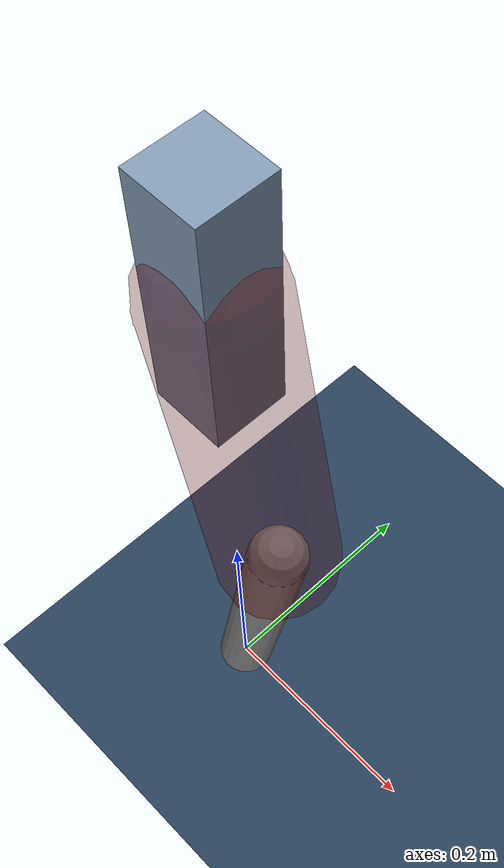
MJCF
<mujoco model="Hopper2D">
	<compiler inertiafromgeom="true" angle="radian" />
	<option timestep="0.001" integrator="implicit" cone="elliptic" solver="Newton" tolerance="1e-10" />

	<default>
		<geom contype="1" conaffinity="1" condim="3" friction="2 0.005 0.0001" solref="0.005 1" />
		<joint limited="true" damping="0.1" />
	</default>

	<asset>
		<texture name="skybox" type="skybox" builtin="gradient" rgb1=".4 .6 .8" rgb2="0 0 0" width="800" height="800" />
		<texture name="grid" type="2d" builtin="checker" rgb1=".1 .2 .3" rgb2=".2 .3 .4" width="300" height="300" mark="edge" markrgb=".2 .3 .4" />
		<material name="ground" texture="grid" texrepeat="1 1" texuniform="true" reflectance="0.1" />
		<material name="leg" rgba="0.5 0.6 0.7 1" />
	</asset>

	<worldbody>

		<geom name="floor" type="plane" size="5 5 0.25" material="ground" />

		<light directional="false" diffuse="0.8 0.8 0.8" specular="0.3 0.3 0.3" pos="0 0 2" dir="0 0 -1" />
		<light mode="targetbodycom" target="base" directional="false" diffuse="0.8 0.8 0.8" specular="0.3 0.3 0.3" pos="0 0 2" dir="0 0 -1" />

		<camera name="fixed" pos="0 -2 1" xyaxes="1 0 0 0 0 1" />
		<camera name="tracking" mode="trackcom" pos="0 -3 1" />

		<body name="root" pos="0 0 0.5247092753665719">
			<joint name="slide_x" type="slide" axis="1 0 0" range="-100 100" />
			<joint name="slide_z" type="slide" axis="0 0 1" range="0 10" />

			<body name="base" pos="0 0 0">
				<geom name="torso" type="box" size="0.03 0.03 0.1" mass="3.1790000000000003" material="leg" />

				<body name="link1" pos="0 0 0" euler="0 1.3771760853591215 0">
					<joint type="hinge" axis="0 -1 0" pos="0 0 0" name="hinge1" limited="true" range="-3.14 3.14" stiffness="0" damping="0.1" />
					<geom name="thigh" type="capsule" fromto="0 0 0 0.26746682513959763 0 0" size="0.05" rgba="0.5 0 0 0.3" mass="0.9020137453629539" />

					<body name="link2" pos="0.26746682513959763 0 0" euler="0 0.3874051100969786 0">
						<joint type="hinge" axis="0 -1 0" pos="0 0 0" name="hinge2" limited="true" range="-3.14 3.14" stiffness="0" damping="0.1" />
						<geom name="shank" type="capsule" fromto="0 0 0 0.2672424502269743 0 0" size="0.025" mass="0.45669396018157943" />

					</body>
				</body>
			</body>
		</body>
	</worldbody>

	<actuator>
		<motor name="torque1" joint="hinge1" ctrlrange="-161.44699095280885 161.44699095280885" ctrllimited="true" gear="1" />
		<motor name="torque2" joint="hinge2" ctrlrange="-82.73174691376181 82.73174691376181" ctrllimited="true" gear="1" />
	</actuator>
</mujoco>
